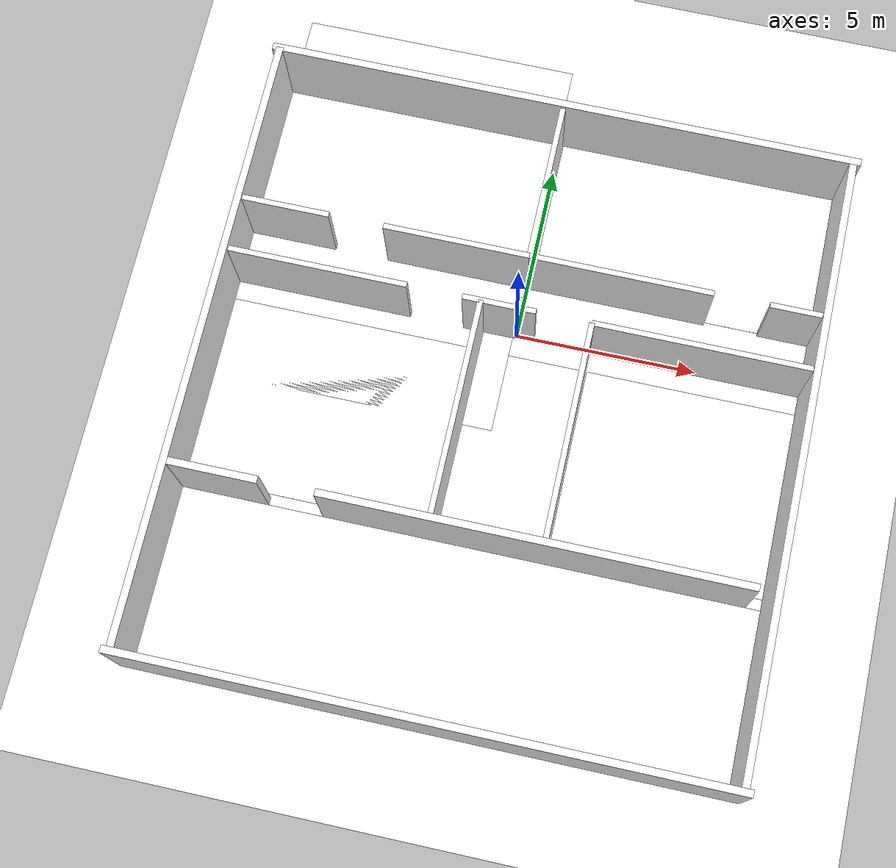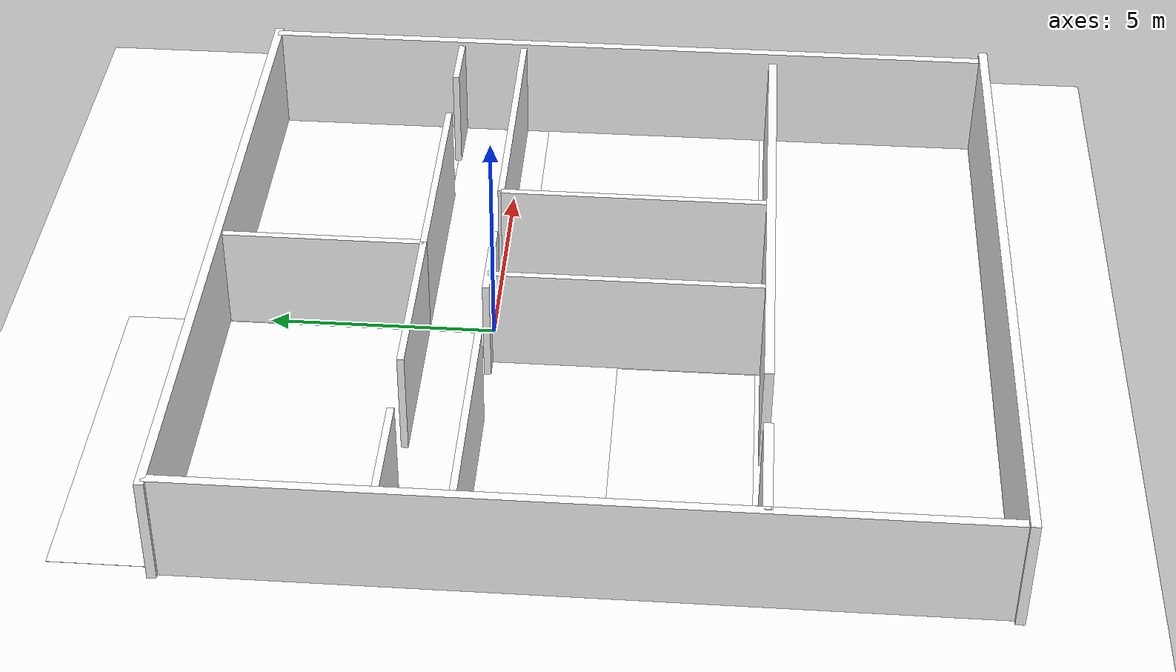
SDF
<?xml version='1.0' encoding='utf-8'?>
<sdf version="1.8">
  <world name="house">

    <physics name="4ms" type="ignored">
      <max_step_size>0.004</max_step_size>
      <real_time_factor>1</real_time_factor>
    </physics>

    <plugin filename="ignition-gazebo-physics-system" name="ignition::gazebo::systems::Physics" />
    <plugin filename="ignition-gazebo-user-commands-system" name="ignition::gazebo::systems::UserCommands" />
    <plugin filename="ignition-gazebo-scene-broadcaster-system" name="ignition::gazebo::systems::SceneBroadcaster" />
    <plugin filename="ignition-gazebo-sensors-system" name="ignition::gazebo::systems::Sensors">
      <render_engine>ogre2</render_engine>
    </plugin>
    <plugin filename="ignition-gazebo-contact-system" name="ignition::gazebo::systems::Contact" />
    <plugin filename="ignition-gazebo-imu-system" name="ignition::gazebo::systems::Imu" />

    <light name="sun" type="directional">
      <pose>0 0 12 0 0 0</pose>
      <cast_shadows>true</cast_shadows>
      <intensity>1</intensity>
      <direction>-0.3 0.1 -0.9</direction>
      <diffuse>1.0 0.97 0.90 1</diffuse>
      <specular>0.2 0.2 0.2 1</specular>
    </light>
    <light name="ceiling_living" type="point">
      <pose>-4 3 3 0 0 0</pose>
      <diffuse>0.9 0.85 0.75 1</diffuse>
      <specular>0.1 0.1 0.1 1</specular>
      <attenuation><range>12</range><linear>0.08</linear></attenuation>
    </light>
    <light name="ceiling_kitchen" type="point">
      <pose>4 4 3 0 0 0</pose>
      <diffuse>0.9 0.9 0.85 1</diffuse>
      <specular>0.1 0.1 0.1 1</specular>
      <attenuation><range>10</range><linear>0.1</linear></attenuation>
    </light>
    <light name="ceiling_hall" type="point">
      <pose>0 0.5 3 0 0 0</pose>
      <diffuse>0.8 0.8 0.8 1</diffuse>
      <specular>0.1 0.1 0.1 1</specular>
      <attenuation><range>12</range><linear>0.1</linear></attenuation>
    </light>
    <light name="ceiling_garage" type="point">
      <pose>0 -8.5 3 0 0 0</pose>
      <diffuse>0.75 0.75 0.78 1</diffuse>
      <specular>0.1 0.1 0.1 1</specular>
      <attenuation><range>16</range><linear>0.08</linear></attenuation>
    </light>
    <light name="ceiling_loft" type="point">
      <pose>-6 4 2.7 0 0 0</pose>
      <diffuse>0.85 0.82 0.72 1</diffuse>
      <specular>0.1 0.1 0.1 1</specular>
      <attenuation><range>8</range><linear>0.15</linear></attenuation>
    </light>

    <model name="ground_plane">
      <static>true</static>
      <link name="link">
        <collision name="c">
          <geometry><plane><normal>0 0 1</normal><size>100 100</size></plane></geometry>
        </collision>
        <visual name="v">
          <geometry><plane><normal>0 0 1</normal><size>100 100</size></plane></geometry>
          <material><ambient>0.6 0.6 0.6 1</ambient><diffuse>1 1 1 1</diffuse>
            <pbr><metal><albedo_map>model://textures/concrete.png</albedo_map><roughness>0.9</roughness></metal></pbr>
          </material>
        </visual>
      </link>
    </model>

    <model name="floor_living">
      <static>true</static><pose>-4 2.7 0.003 0 0 0</pose>
      <link name="link">
        <collision name="c"><geometry><box><size>7.8 11 0.004</size></box></geometry></collision>
        <visual name="v"><geometry><box><size>7.8 11 0.004</size></box></geometry>
          <material><ambient>0.6 0.6 0.6 1</ambient><diffuse>1 1 1 1</diffuse>
            <pbr><metal><albedo_map>model://textures/wood_plank.png</albedo_map><roughness>0.7</roughness></metal></pbr>
          </material>
        </visual>
      </link>
    </model>

    <model name="floor_kitchen">
      <static>true</static><pose>4 3.7 0.003 0 0 0</pose>
      <link name="link">
        <collision name="c"><geometry><box><size>7.8 4.4 0.004</size></box></geometry></collision>
        <visual name="v"><geometry><box><size>7.8 4.4 0.004</size></box></geometry>
          <material><ambient>0.6 0.6 0.6 1</ambient><diffuse>1 1 1 1</diffuse>
            <pbr><metal><albedo_map>model://textures/tile_kitchen.png</albedo_map><roughness>0.5</roughness></metal></pbr>
          </material>
        </visual>
      </link>
    </model>

    <model name="floor_bed1">
      <static>true</static><pose>5 -3.2 0.003 0 0 0</pose>
      <link name="link">
        <collision name="c"><geometry><box><size>5.8 5.2 0.004</size></box></geometry></collision>
        <visual name="v"><geometry><box><size>5.8 5.2 0.004</size></box></geometry>
          <material><ambient>0.6 0.6 0.6 1</ambient><diffuse>1 1 1 1</diffuse>
            <pbr><metal><albedo_map>model://textures/carpet_blue.png</albedo_map><roughness>0.95</roughness></metal></pbr>
          </material>
        </visual>
      </link>
    </model>

    <model name="floor_bed2">
      <static>true</static><pose>-4.5 -3.2 0.003 0 0 0</pose>
      <link name="link">
        <collision name="c"><geometry><box><size>6.8 5.2 0.004</size></box></geometry></collision>
        <visual name="v"><geometry><box><size>6.8 5.2 0.004</size></box></geometry>
          <material><ambient>0.6 0.6 0.6 1</ambient><diffuse>1 1 1 1</diffuse>
            <pbr><metal><albedo_map>model://textures/carpet_green.png</albedo_map><roughness>0.95</roughness></metal></pbr>
          </material>
        </visual>
      </link>
    </model>

    <model name="floor_bath">
      <static>true</static><pose>0.5 -3.2 0.003 0 0 0</pose>
      <link name="link">
        <collision name="c"><geometry><box><size>3 5.2 0.004</size></box></geometry></collision>
        <visual name="v"><geometry><box><size>3 5.2 0.004</size></box></geometry>
          <material><ambient>0.6 0.6 0.6 1</ambient><diffuse>1 1 1 1</diffuse>
            <pbr><metal><albedo_map>model://textures/tile_bath.png</albedo_map><roughness>0.5</roughness></metal></pbr>
          </material>
        </visual>
      </link>
    </model>

    <model name="floor_garage">
      <static>true</static><pose>0 -8.5 0.003 0 0 0</pose>
      <link name="link">
        <collision name="c"><geometry><box><size>16 4.8 0.004</size></box></geometry></collision>
        <visual name="v"><geometry><box><size>16 4.8 0.004</size></box></geometry>
          <material><ambient>0.6 0.6 0.6 1</ambient><diffuse>1 1 1 1</diffuse>
            <pbr><metal><albedo_map>model://textures/concrete.png</albedo_map><roughness>0.9</roughness></metal></pbr>
          </material>
        </visual>
      </link>
    </model>

    <model name="wall_n"><static>true</static><pose>0  6 1.25 0 0 0</pose><link name="link">
      <collision name="c"><geometry><box><size>16.4 0.2 2.5</size></box></geometry></collision>
      <visual name="v"><geometry><box><size>16.4 0.2 2.5</size></box></geometry>
        <material><ambient>0.6 0.6 0.6 1</ambient><diffuse>1 1 1 1</diffuse>
          <pbr><metal><albedo_map>model://textures/drywall.png</albedo_map><roughness>0.85</roughness></metal></pbr>
        </material>
      </visual></link></model>

    <model name="wall_garage_n_a"><static>true</static><pose>-6.75 -6 1.25 0 0 0</pose><link name="link">
      <collision name="c"><geometry><box><size>2.5 0.2 2.5</size></box></geometry></collision>
      <visual name="v"><geometry><box><size>2.5 0.2 2.5</size></box></geometry>
        <material><ambient>0.6 0.6 0.6 1</ambient><diffuse>1 1 1 1</diffuse>
          <pbr><metal><albedo_map>model://textures/drywall.png</albedo_map><roughness>0.85</roughness></metal></pbr>
        </material>
      </visual></link></model>
    <model name="wall_garage_n_b"><static>true</static><pose>1.75 -6 1.25 0 0 0</pose><link name="link">
      <collision name="c"><geometry><box><size>11.5 0.2 2.5</size></box></geometry></collision>
      <visual name="v"><geometry><box><size>11.5 0.2 2.5</size></box></geometry>
        <material><ambient>0.6 0.6 0.6 1</ambient><diffuse>1 1 1 1</diffuse>
          <pbr><metal><albedo_map>model://textures/drywall.png</albedo_map><roughness>0.85</roughness></metal></pbr>
        </material>
      </visual></link></model>

    <model name="wall_s"><static>true</static><pose>0 -11 1.3 0 0 0</pose><link name="link">
      <collision name="c"><geometry><box><size>16.4 0.2 2.6</size></box></geometry></collision>
      <visual name="v"><geometry><box><size>16.4 0.2 2.6</size></box></geometry>
        <material><ambient>0.6 0.6 0.6 1</ambient><diffuse>1 1 1 1</diffuse>
          <pbr><metal><albedo_map>model://textures/concrete.png</albedo_map><roughness>0.9</roughness></metal></pbr>
        </material>
      </visual></link></model>

    <model name="wall_e"><static>true</static><pose>8  -2.5 1.25 0 0 0</pose><link name="link">
      <collision name="c"><geometry><box><size>0.2 17 2.5</size></box></geometry></collision>
      <visual name="v"><geometry><box><size>0.2 17 2.5</size></box></geometry>
        <material><ambient>0.6 0.6 0.6 1</ambient><diffuse>1 1 1 1</diffuse>
          <pbr><metal><albedo_map>model://textures/drywall.png</albedo_map><roughness>0.85</roughness></metal></pbr>
        </material>
      </visual></link></model>

    <model name="wall_w"><static>true</static><pose>-8  -2.5 1.25 0 0 0</pose><link name="link">
      <collision name="c"><geometry><box><size>0.2 17 2.5</size></box></geometry></collision>
      <visual name="v"><geometry><box><size>0.2 17 2.5</size></box></geometry>
        <material><ambient>0.6 0.6 0.6 1</ambient><diffuse>1 1 1 1</diffuse>
          <pbr><metal><albedo_map>model://textures/drywall.png</albedo_map><roughness>0.85</roughness></metal></pbr>
        </material>
      </visual></link></model>

    <model name="wall_A1"><static>true</static><pose>-5.5 0 1.2 0 0 0</pose><link name="link">
      <collision name="c"><geometry><box><size>5 0.15 2.4</size></box></geometry></collision>
      <visual name="v"><geometry><box><size>5 0.15 2.4</size></box></geometry>
        <material><ambient>0.6 0.6 0.6 1</ambient><diffuse>1 1 1 1</diffuse>
          <pbr><metal><albedo_map>model://textures/drywall.png</albedo_map><roughness>0.85</roughness></metal></pbr>
        </material>
      </visual></link></model>

    <model name="wall_A2"><static>true</static><pose>-0.5 0 1.2 0 0 0</pose><link name="link">
      <collision name="c"><geometry><box><size>2 0.15 2.4</size></box></geometry></collision>
      <visual name="v"><geometry><box><size>2 0.15 2.4</size></box></geometry>
        <material><ambient>0.6 0.6 0.6 1</ambient><diffuse>1 1 1 1</diffuse>
          <pbr><metal><albedo_map>model://textures/drywall.png</albedo_map><roughness>0.85</roughness></metal></pbr>
        </material>
      </visual></link></model>

    <model name="wall_A4"><static>true</static><pose>5 0 1.2 0 0 0</pose><link name="link">
      <collision name="c"><geometry><box><size>6 0.15 2.4</size></box></geometry></collision>
      <visual name="v"><geometry><box><size>6 0.15 2.4</size></box></geometry>
        <material><ambient>0.6 0.6 0.6 1</ambient><diffuse>1 1 1 1</diffuse>
          <pbr><metal><albedo_map>model://textures/drywall.png</albedo_map><roughness>0.85</roughness></metal></pbr>
        </material>
      </visual></link></model>

    <model name="wall_B1"><static>true</static><pose>-6.75 1.5 1.2 0 0 0</pose><link name="link">
      <collision name="c"><geometry><box><size>2.5 0.15 2.4</size></box></geometry></collision>
      <visual name="v"><geometry><box><size>2.5 0.15 2.4</size></box></geometry>
        <material><ambient>0.6 0.6 0.6 1</ambient><diffuse>1 1 1 1</diffuse>
          <pbr><metal><albedo_map>model://textures/drywall.png</albedo_map><roughness>0.85</roughness></metal></pbr>
        </material>
      </visual></link></model>

    <model name="wall_B2"><static>true</static><pose>-2 1.5 1.2 0 0 0</pose><link name="link">
      <collision name="c"><geometry><box><size>4 0.15 2.4</size></box></geometry></collision>
      <visual name="v"><geometry><box><size>4 0.15 2.4</size></box></geometry>
        <material><ambient>0.6 0.6 0.6 1</ambient><diffuse>1 1 1 1</diffuse>
          <pbr><metal><albedo_map>model://textures/drywall.png</albedo_map><roughness>0.85</roughness></metal></pbr>
        </material>
      </visual></link></model>

    <model name="wall_B3"><static>true</static><pose>2.5 1.5 1.2 0 0 0</pose><link name="link">
      <collision name="c"><geometry><box><size>5 0.15 2.4</size></box></geometry></collision>
      <visual name="v"><geometry><box><size>5 0.15 2.4</size></box></geometry>
        <material><ambient>0.6 0.6 0.6 1</ambient><diffuse>1 1 1 1</diffuse>
          <pbr><metal><albedo_map>model://textures/drywall.png</albedo_map><roughness>0.85</roughness></metal></pbr>
        </material>
      </visual></link></model>

    <model name="wall_B5"><static>true</static><pose>7.25 1.5 1.2 0 0 0</pose><link name="link">
      <collision name="c"><geometry><box><size>1.5 0.15 2.4</size></box></geometry></collision>
      <visual name="v"><geometry><box><size>1.5 0.15 2.4</size></box></geometry>
        <material><ambient>0.6 0.6 0.6 1</ambient><diffuse>1 1 1 1</diffuse>
          <pbr><metal><albedo_map>model://textures/drywall.png</albedo_map><roughness>0.85</roughness></metal></pbr>
        </material>
      </visual></link></model>

    <model name="wall_C"><static>true</static><pose>0 3.75 1.2 0 0 0</pose><link name="link">
      <collision name="c"><geometry><box><size>0.15 4.5 2.4</size></box></geometry></collision>
      <visual name="v"><geometry><box><size>0.15 4.5 2.4</size></box></geometry>
        <material><ambient>0.6 0.6 0.6 1</ambient><diffuse>1 1 1 1</diffuse>
          <pbr><metal><albedo_map>model://textures/drywall.png</albedo_map><roughness>0.85</roughness></metal></pbr>
        </material>
      </visual></link></model>

    <model name="wall_D"><static>true</static><pose>-1 -3 1.2 0 0 0</pose><link name="link">
      <collision name="c"><geometry><box><size>0.15 6 2.4</size></box></geometry></collision>
      <visual name="v"><geometry><box><size>0.15 6 2.4</size></box></geometry>
        <material><ambient>0.6 0.6 0.6 1</ambient><diffuse>1 1 1 1</diffuse>
          <pbr><metal><albedo_map>model://textures/drywall.png</albedo_map><roughness>0.85</roughness></metal></pbr>
        </material>
      </visual></link></model>

    <model name="wall_E"><static>true</static><pose>2 -3 1.2 0 0 0</pose><link name="link">
      <collision name="c"><geometry><box><size>0.15 6 2.4</size></box></geometry></collision>
      <visual name="v"><geometry><box><size>0.15 6 2.4</size></box></geometry>
        <material><ambient>0.6 0.6 0.6 1</ambient><diffuse>1 1 1 1</diffuse>
          <pbr><metal><albedo_map>model://textures/drywall.png</albedo_map><roughness>0.85</roughness></metal></pbr>
        </material>
      </visual></link></model>

    <model name="world_monitor_cam">
      <static>true</static>
      <pose>7.5 7.0 5.3 0 0.55 -2.356</pose>
      <link name="link">
        <sensor name="monitor_camera" type="camera">
          <always_on>true</always_on>
          <update_rate>10</update_rate>
          <topic>world_monitor/image_raw</topic>
          <camera>
            <horizontal_fov>1.3</horizontal_fov>
            <image><width>960</width><height>540</height><format>R8G8B8</format></image>
            <clip><near>0.05</near><far>35.0</far></clip>
          </camera>
        </sensor>
      </link>
    </model>

  </world>
</sdf>
